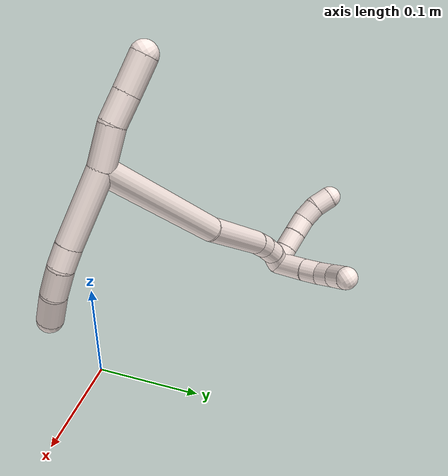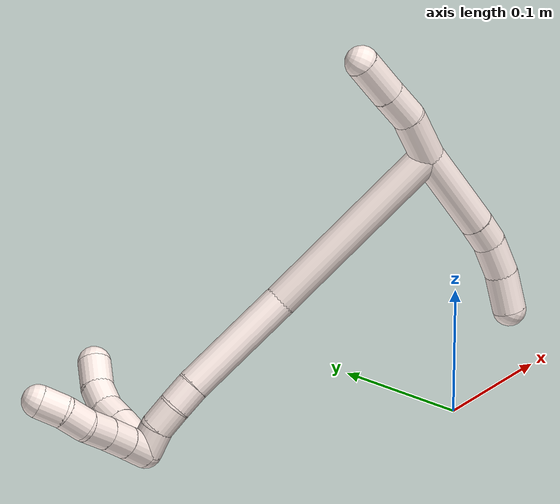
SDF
<sdf version="1.7">
 <world name="default">
  <model name="11">
   <static>0</static>
   <link name="11">
    <collision name="collision-cylinder-e_1_2_8">
     <pose>0.016882 0.010451 -0.029712 -2.80338 0.492017 -1.94727</pose>
     <geometry><cylinder><radius>0.0125</radius><length>0.071471</length></cylinder></geometry>
     <surface>
      <friction><ode><mu>1.16</mu><mu2>1.16</mu2><slip1>0</slip1><slip2>0</slip2></ode></friction>
      <contact><ode><kp>1e+06</kp><kd>1</kd><max_vel>0</max_vel><min_depth>0.001</min_depth></ode></contact>
     </surface>
    </collision>
    <visual name="visual-cylinder-e_1_2_8">
     <pose>0.016882 0.010451 -0.029712 -2.80338 0.492017 -1.94727</pose>
     <geometry><cylinder><radius>0.0125</radius><length>0.071471</length></cylinder></geometry>
     <material><ambient>1 0.933333 0.909804 1</ambient></material>
    </visual>
    <collision name="collision-cylinder-e_2_8_9">
     <pose>0.039063 0.024132 -0.067842 -2.77516 0.531437 -1.94609</pose>
     <geometry><cylinder><radius>0.0125</radius><length>0.020917</length></cylinder></geometry>
     <surface>
      <friction><ode><mu>1.16</mu><mu2>1.16</mu2><slip1>0</slip1><slip2>0</slip2></ode></friction>
      <contact><ode><kp>1e+06</kp><kd>1</kd><max_vel>0</max_vel><min_depth>0.001</min_depth></ode></contact>
     </surface>
    </collision>
    <visual name="visual-cylinder-e_2_8_9">
     <pose>0.039063 0.024132 -0.067842 -2.77516 0.531437 -1.94609</pose>
     <geometry><cylinder><radius>0.0125</radius><length>0.020917</length></cylinder></geometry>
     <material><ambient>1 0.933333 0.909804 1</ambient></material>
    </visual>
    <collision name="collision-cylinder-e_3_9_10">
     <pose>0.050424 0.03446 -0.086422 -2.53191 0.454736 -1.26808</pose>
     <geometry><cylinder><radius>0.0125</radius><length>0.027595</length></cylinder></geometry>
     <surface>
      <friction><ode><mu>1.16</mu><mu2>1.16</mu2><slip1>0</slip1><slip2>0</slip2></ode></friction>
      <contact><ode><kp>1e+06</kp><kd>1</kd><max_vel>0</max_vel><min_depth>0.001</min_depth></ode></contact>
     </surface>
    </collision>
    <visual name="visual-cylinder-e_3_9_10">
     <pose>0.050424 0.03446 -0.086422 -2.53191 0.454736 -1.26808</pose>
     <geometry><cylinder><radius>0.0125</radius><length>0.027595</length></cylinder></geometry>
     <material><ambient>1 0.933333 0.909804 1</ambient></material>
    </visual>
    <collision name="collision-cylinder-e_4_10_6">
     <pose>0.062019 0.051704 -0.106158 -2.32721 0.377753 -0.834384</pose>
     <geometry><cylinder><radius>0.0125</radius><length>0.030017</length></cylinder></geometry>
     <surface>
      <friction><ode><mu>1.16</mu><mu2>1.16</mu2><slip1>0</slip1><slip2>0</slip2></ode></friction>
      <contact><ode><kp>1e+06</kp><kd>1</kd><max_vel>0</max_vel><min_depth>0.001</min_depth></ode></contact>
     </surface>
    </collision>
    <visual name="visual-cylinder-e_4_10_6">
     <pose>0.062019 0.051704 -0.106158 -2.32721 0.377753 -0.834384</pose>
     <geometry><cylinder><radius>0.0125</radius><length>0.030017</length></cylinder></geometry>
     <material><ambient>1 0.933333 0.909804 1</ambient></material>
    </visual>
    <collision name="collision-cylinder-e_1_2_11">
     <pose>-0.010669 -0.007423 0.014176 0.482364 -0.588066 -0.14869</pose>
     <geometry><cylinder><radius>0.0125</radius><length>0.038465</length></cylinder></geometry>
     <surface>
      <friction><ode><mu>1.16</mu><mu2>1.16</mu2><slip1>0</slip1><slip2>0</slip2></ode></friction>
      <contact><ode><kp>1e+06</kp><kd>1</kd><max_vel>0</max_vel><min_depth>0.001</min_depth></ode></contact>
     </surface>
    </collision>
    <visual name="visual-cylinder-e_1_2_11">
     <pose>-0.010669 -0.007423 0.014176 0.482364 -0.588066 -0.14869</pose>
     <geometry><cylinder><radius>0.0125</radius><length>0.038465</length></cylinder></geometry>
     <material><ambient>1 0.933333 0.909804 1</ambient></material>
    </visual>
    <collision name="collision-cylinder-e_2_11_12">
     <pose>-0.027956 -0.017788 0.040143 0.244521 -0.498616 -0.062548</pose>
     <geometry><cylinder><radius>0.0125</radius><length>0.027673</length></cylinder></geometry>
     <surface>
      <friction><ode><mu>1.16</mu><mu2>1.16</mu2><slip1>0</slip1><slip2>0</slip2></ode></friction>
      <contact><ode><kp>1e+06</kp><kd>1</kd><max_vel>0</max_vel><min_depth>0.001</min_depth></ode></contact>
     </surface>
    </collision>
    <visual name="visual-cylinder-e_2_11_12">
     <pose>-0.027956 -0.017788 0.040143 0.244521 -0.498616 -0.062548</pose>
     <geometry><cylinder><radius>0.0125</radius><length>0.027673</length></cylinder></geometry>
     <material><ambient>1 0.933333 0.909804 1</ambient></material>
    </visual>
    <collision name="collision-cylinder-e_3_12_5">
     <pose>-0.042643 -0.024685 0.066281 0.268992 -0.496885 -0.068626</pose>
     <geometry><cylinder><radius>0.0125</radius><length>0.033862</length></cylinder></geometry>
     <surface>
      <friction><ode><mu>1.16</mu><mu2>1.16</mu2><slip1>0</slip1><slip2>0</slip2></ode></friction>
      <contact><ode><kp>1e+06</kp><kd>1</kd><max_vel>0</max_vel><min_depth>0.001</min_depth></ode></contact>
     </surface>
    </collision>
    <visual name="visual-cylinder-e_3_12_5">
     <pose>-0.042643 -0.024685 0.066281 0.268992 -0.496885 -0.068626</pose>
     <geometry><cylinder><radius>0.0125</radius><length>0.033862</length></cylinder></geometry>
     <material><ambient>1 0.933333 0.909804 1</ambient></material>
    </visual>
    <collision name="collision-cylinder-e_1_2_13">
     <pose>0.02793 0.065766 0.023665 -1.22538 0.380163 -0.268862</pose>
     <geometry><cylinder><radius>0.0125</radius><length>0.150536</length></cylinder></geometry>
     <surface>
      <friction><ode><mu>1.16</mu><mu2>1.16</mu2><slip1>0</slip1><slip2>0</slip2></ode></friction>
      <contact><ode><kp>1e+06</kp><kd>1</kd><max_vel>0</max_vel><min_depth>0.001</min_depth></ode></contact>
     </surface>
    </collision>
    <visual name="visual-cylinder-e_1_2_13">
     <pose>0.02793 0.065766 0.023665 -1.22538 0.380163 -0.268862</pose>
     <geometry><cylinder><radius>0.0125</radius><length>0.150536</length></cylinder></geometry>
     <material><ambient>1 0.933333 0.909804 1</ambient></material>
    </visual>
    <collision name="collision-cylinder-e_2_13_14">
     <pose>0.064078 0.172146 0.063246 -1.19733 0.186225 -0.127236</pose>
     <geometry><cylinder><radius>0.0125</radius><length>0.088778</length></cylinder></geometry>
     <surface>
      <friction><ode><mu>1.16</mu><mu2>1.16</mu2><slip1>0</slip1><slip2>0</slip2></ode></friction>
      <contact><ode><kp>1e+06</kp><kd>1</kd><max_vel>0</max_vel><min_depth>0.001</min_depth></ode></contact>
     </surface>
    </collision>
    <visual name="visual-cylinder-e_2_13_14">
     <pose>0.064078 0.172146 0.063246 -1.19733 0.186225 -0.127236</pose>
     <geometry><cylinder><radius>0.0125</radius><length>0.088778</length></cylinder></geometry>
     <material><ambient>1 0.933333 0.909804 1</ambient></material>
    </visual>
    <collision name="collision-cylinder-e_3_14_15">
     <pose>0.074602 0.222176 0.081914 -1.28632 0.23078 -0.173298</pose>
     <geometry><cylinder><radius>0.0125</radius><length>0.020153</length></cylinder></geometry>
     <surface>
      <friction><ode><mu>1.16</mu><mu2>1.16</mu2><slip1>0</slip1><slip2>0</slip2></ode></friction>
      <contact><ode><kp>1e+06</kp><kd>1</kd><max_vel>0</max_vel><min_depth>0.001</min_depth></ode></contact>
     </surface>
    </collision>
    <visual name="visual-cylinder-e_3_14_15">
     <pose>0.074602 0.222176 0.081914 -1.28632 0.23078 -0.173298</pose>
     <geometry><cylinder><radius>0.0125</radius><length>0.020153</length></cylinder></geometry>
     <material><ambient>1 0.933333 0.909804 1</ambient></material>
    </visual>
    <collision name="collision-cylinder-e_4_15_16">
     <pose>0.080773 0.240796 0.086953 -1.32731 0.387099 -0.304173</pose>
     <geometry><cylinder><radius>0.0125</radius><length>0.020486</length></cylinder></geometry>
     <surface>
      <friction><ode><mu>1.16</mu><mu2>1.16</mu2><slip1>0</slip1><slip2>0</slip2></ode></friction>
      <contact><ode><kp>1e+06</kp><kd>1</kd><max_vel>0</max_vel><min_depth>0.001</min_depth></ode></contact>
     </surface>
    </collision>
    <visual name="visual-cylinder-e_4_15_16">
     <pose>0.080773 0.240796 0.086953 -1.32731 0.387099 -0.304173</pose>
     <geometry><cylinder><radius>0.0125</radius><length>0.020486</length></cylinder></geometry>
     <material><ambient>1 0.933333 0.909804 1</ambient></material>
    </visual>
    <collision name="collision-cylinder-e_5_16_1">
     <pose>0.088976 0.259034 0.088936 -1.60449 0.447329 -0.46213</pose>
     <geometry><cylinder><radius>0.0125</radius><length>0.020047</length></cylinder></geometry>
     <surface>
      <friction><ode><mu>1.16</mu><mu2>1.16</mu2><slip1>0</slip1><slip2>0</slip2></ode></friction>
      <contact><ode><kp>1e+06</kp><kd>1</kd><max_vel>0</max_vel><min_depth>0.001</min_depth></ode></contact>
     </surface>
    </collision>
    <visual name="visual-cylinder-e_5_16_1">
     <pose>0.088976 0.259034 0.088936 -1.60449 0.447329 -0.46213</pose>
     <geometry><cylinder><radius>0.0125</radius><length>0.020047</length></cylinder></geometry>
     <material><ambient>1 0.933333 0.909804 1</ambient></material>
    </visual>
    <collision name="collision-cylinder-e_1_1_17">
     <pose>0.088421 0.268701 0.097331 -0.072865 -0.511018 0.019042</pose>
     <geometry><cylinder><radius>0.0125</radius><length>0.02</length></cylinder></geometry>
     <surface>
      <friction><ode><mu>1.16</mu><mu2>1.16</mu2><slip1>0</slip1><slip2>0</slip2></ode></friction>
      <contact><ode><kp>1e+06</kp><kd>1</kd><max_vel>0</max_vel><min_depth>0.001</min_depth></ode></contact>
     </surface>
    </collision>
    <visual name="visual-cylinder-e_1_1_17">
     <pose>0.088421 0.268701 0.097331 -0.072865 -0.511018 0.019042</pose>
     <geometry><cylinder><radius>0.0125</radius><length>0.02</length></cylinder></geometry>
     <material><ambient>1 0.933333 0.909804 1</ambient></material>
    </visual>
    <collision name="collision-cylinder-e_2_17_18">
     <pose>0.078858 0.270158 0.114833 -0.093047 -0.486171 0.02309</pose>
     <geometry><cylinder><radius>0.0125</radius><length>0.02</length></cylinder></geometry>
     <surface>
      <friction><ode><mu>1.16</mu><mu2>1.16</mu2><slip1>0</slip1><slip2>0</slip2></ode></friction>
      <contact><ode><kp>1e+06</kp><kd>1</kd><max_vel>0</max_vel><min_depth>0.001</min_depth></ode></contact>
     </surface>
    </collision>
    <visual name="visual-cylinder-e_2_17_18">
     <pose>0.078858 0.270158 0.114833 -0.093047 -0.486171 0.02309</pose>
     <geometry><cylinder><radius>0.0125</radius><length>0.02</length></cylinder></geometry>
     <material><ambient>1 0.933333 0.909804 1</ambient></material>
    </visual>
    <collision name="collision-cylinder-e_3_18_19">
     <pose>0.069499 0.272208 0.132384 -0.13959 -0.487765 0.034788</pose>
     <geometry><cylinder><radius>0.0125</radius><length>0.02</length></cylinder></geometry>
     <surface>
      <friction><ode><mu>1.16</mu><mu2>1.16</mu2><slip1>0</slip1><slip2>0</slip2></ode></friction>
      <contact><ode><kp>1e+06</kp><kd>1</kd><max_vel>0</max_vel><min_depth>0.001</min_depth></ode></contact>
     </surface>
    </collision>
    <visual name="visual-cylinder-e_3_18_19">
     <pose>0.069499 0.272208 0.132384 -0.13959 -0.487765 0.034788</pose>
     <geometry><cylinder><radius>0.0125</radius><length>0.02</length></cylinder></geometry>
     <material><ambient>1 0.933333 0.909804 1</ambient></material>
    </visual>
    <collision name="collision-cylinder-e_4_19_20">
     <pose>0.062128 0.272758 0.150741 0.070564 -0.271725 -0.00965</pose>
     <geometry><cylinder><radius>0.0125</radius><length>0.02</length></cylinder></geometry>
     <surface>
      <friction><ode><mu>1.16</mu><mu2>1.16</mu2><slip1>0</slip1><slip2>0</slip2></ode></friction>
      <contact><ode><kp>1e+06</kp><kd>1</kd><max_vel>0</max_vel><min_depth>0.001</min_depth></ode></contact>
     </surface>
    </collision>
    <visual name="visual-cylinder-e_4_19_20">
     <pose>0.062128 0.272758 0.150741 0.070564 -0.271725 -0.00965</pose>
     <geometry><cylinder><radius>0.0125</radius><length>0.02</length></cylinder></geometry>
     <material><ambient>1 0.933333 0.909804 1</ambient></material>
    </visual>
    <collision name="collision-cylinder-e_5_20_4">
     <pose>0.059175 0.272448 0.17034 -0.036901 -0.026941 0.000497</pose>
     <geometry><cylinder><radius>0.0125</radius><length>0.02</length></cylinder></geometry>
     <surface>
      <friction><ode><mu>1.16</mu><mu2>1.16</mu2><slip1>0</slip1><slip2>0</slip2></ode></friction>
      <contact><ode><kp>1e+06</kp><kd>1</kd><max_vel>0</max_vel><min_depth>0.001</min_depth></ode></contact>
     </surface>
    </collision>
    <visual name="visual-cylinder-e_5_20_4">
     <pose>0.059175 0.272448 0.17034 -0.036901 -0.026941 0.000497</pose>
     <geometry><cylinder><radius>0.0125</radius><length>0.02</length></cylinder></geometry>
     <material><ambient>1 0.933333 0.909804 1</ambient></material>
    </visual>
    <collision name="collision-cylinder-e_1_1_21">
     <pose>0.106244 0.260414 0.098713 0.649274 0.796159 0.281187</pose>
     <geometry><cylinder><radius>0.0125</radius><length>0.036191</length></cylinder></geometry>
     <surface>
      <friction><ode><mu>1.16</mu><mu2>1.16</mu2><slip1>0</slip1><slip2>0</slip2></ode></friction>
      <contact><ode><kp>1e+06</kp><kd>1</kd><max_vel>0</max_vel><min_depth>0.001</min_depth></ode></contact>
     </surface>
    </collision>
    <visual name="visual-cylinder-e_1_1_21">
     <pose>0.106244 0.260414 0.098713 0.649274 0.796159 0.281187</pose>
     <geometry><cylinder><radius>0.0125</radius><length>0.036191</length></cylinder></geometry>
     <material><ambient>1 0.933333 0.909804 1</ambient></material>
    </visual>
    <collision name="collision-cylinder-e_2_21_22">
     <pose>0.126275 0.249075 0.114839 0.547676 0.786752 0.232099</pose>
     <geometry><cylinder><radius>0.0125</radius><length>0.020051</length></cylinder></geometry>
     <surface>
      <friction><ode><mu>1.16</mu><mu2>1.16</mu2><slip1>0</slip1><slip2>0</slip2></ode></friction>
      <contact><ode><kp>1e+06</kp><kd>1</kd><max_vel>0</max_vel><min_depth>0.001</min_depth></ode></contact>
     </surface>
    </collision>
    <visual name="visual-cylinder-e_2_21_22">
     <pose>0.126275 0.249075 0.114839 0.547676 0.786752 0.232099</pose>
     <geometry><cylinder><radius>0.0125</radius><length>0.020051</length></cylinder></geometry>
     <material><ambient>1 0.933333 0.909804 1</ambient></material>
    </visual>
    <collision name="collision-cylinder-e_3_22_23">
     <pose>0.139403 0.239068 0.125992 0.891 0.638242 0.312977</pose>
     <geometry><cylinder><radius>0.0125</radius><length>0.020238</length></cylinder></geometry>
     <surface>
      <friction><ode><mu>1.16</mu><mu2>1.16</mu2><slip1>0</slip1><slip2>0</slip2></ode></friction>
      <contact><ode><kp>1e+06</kp><kd>1</kd><max_vel>0</max_vel><min_depth>0.001</min_depth></ode></contact>
     </surface>
    </collision>
    <visual name="visual-cylinder-e_3_22_23">
     <pose>0.139403 0.239068 0.125992 0.891 0.638242 0.312977</pose>
     <geometry><cylinder><radius>0.0125</radius><length>0.020238</length></cylinder></geometry>
     <material><ambient>1 0.933333 0.909804 1</ambient></material>
    </visual>
    <collision name="collision-cylinder-e_4_23_3">
     <pose>0.151207 0.223358 0.135196 1.15949 0.513383 0.340423</pose>
     <geometry><cylinder><radius>0.0125</radius><length>0.02352</length></cylinder></geometry>
     <surface>
      <friction><ode><mu>1.16</mu><mu2>1.16</mu2><slip1>0</slip1><slip2>0</slip2></ode></friction>
      <contact><ode><kp>1e+06</kp><kd>1</kd><max_vel>0</max_vel><min_depth>0.001</min_depth></ode></contact>
     </surface>
    </collision>
    <visual name="visual-cylinder-e_4_23_3">
     <pose>0.151207 0.223358 0.135196 1.15949 0.513383 0.340423</pose>
     <geometry><cylinder><radius>0.0125</radius><length>0.02352</length></cylinder></geometry>
     <material><ambient>1 0.933333 0.909804 1</ambient></material>
    </visual>
    <collision name="collision-sphere-3">
     <pose>0.156983 0.213968 0.139292 0 -0 0</pose>
     <geometry><sphere><radius>0.0125</radius></sphere></geometry>
     <surface>
      <friction><ode><mu>1.16</mu><mu2>1.16</mu2><slip1>0</slip1><slip2>0</slip2></ode></friction>
      <contact><ode><kp>1e+06</kp><kd>1</kd><max_vel>0</max_vel><min_depth>0.001</min_depth></ode></contact>
     </surface>
    </collision>
    <visual name="visual-sphere-3">
     <pose>0.156983 0.213968 0.139292 0 -0 0</pose>
     <geometry><sphere><radius>0.0125</radius></sphere></geometry>
     <material><ambient>1 0.933333 0.909804 1</ambient></material>
    </visual>
    <collision name="collision-sphere-23">
     <pose>0.145431 0.232748 0.1311 0 -0 0</pose>
     <geometry><sphere><radius>0.0125</radius></sphere></geometry>
     <surface>
      <friction><ode><mu>1.16</mu><mu2>1.16</mu2><slip1>0</slip1><slip2>0</slip2></ode></friction>
      <contact><ode><kp>1e+06</kp><kd>1</kd><max_vel>0</max_vel><min_depth>0.001</min_depth></ode></contact>
     </surface>
    </collision>
    <visual name="visual-sphere-23">
     <pose>0.145431 0.232748 0.1311 0 -0 0</pose>
     <geometry><sphere><radius>0.0125</radius></sphere></geometry>
     <material><ambient>1 0.933333 0.909804 1</ambient></material>
    </visual>
    <collision name="collision-sphere-22">
     <pose>0.133374 0.245388 0.120883 0 -0 0</pose>
     <geometry><sphere><radius>0.0125</radius></sphere></geometry>
     <surface>
      <friction><ode><mu>1.16</mu><mu2>1.16</mu2><slip1>0</slip1><slip2>0</slip2></ode></friction>
      <contact><ode><kp>1e+06</kp><kd>1</kd><max_vel>0</max_vel><min_depth>0.001</min_depth></ode></contact>
     </surface>
    </collision>
    <visual name="visual-sphere-22">
     <pose>0.133374 0.245388 0.120883 0 -0 0</pose>
     <geometry><sphere><radius>0.0125</radius></sphere></geometry>
     <material><ambient>1 0.933333 0.909804 1</ambient></material>
    </visual>
    <collision name="collision-sphere-21">
     <pose>0.119177 0.252761 0.108795 0 -0 0</pose>
     <geometry><sphere><radius>0.0125</radius></sphere></geometry>
     <surface>
      <friction><ode><mu>1.16</mu><mu2>1.16</mu2><slip1>0</slip1><slip2>0</slip2></ode></friction>
      <contact><ode><kp>1e+06</kp><kd>1</kd><max_vel>0</max_vel><min_depth>0.001</min_depth></ode></contact>
     </surface>
    </collision>
    <visual name="visual-sphere-21">
     <pose>0.119177 0.252761 0.108795 0 -0 0</pose>
     <geometry><sphere><radius>0.0125</radius></sphere></geometry>
     <material><ambient>1 0.933333 0.909804 1</ambient></material>
    </visual>
    <collision name="collision-sphere-4">
     <pose>0.058906 0.272817 0.180329 0 -0 0</pose>
     <geometry><sphere><radius>0.0125</radius></sphere></geometry>
     <surface>
      <friction><ode><mu>1.16</mu><mu2>1.16</mu2><slip1>0</slip1><slip2>0</slip2></ode></friction>
      <contact><ode><kp>1e+06</kp><kd>1</kd><max_vel>0</max_vel><min_depth>0.001</min_depth></ode></contact>
     </surface>
    </collision>
    <visual name="visual-sphere-4">
     <pose>0.058906 0.272817 0.180329 0 -0 0</pose>
     <geometry><sphere><radius>0.0125</radius></sphere></geometry>
     <material><ambient>1 0.933333 0.909804 1</ambient></material>
    </visual>
    <collision name="collision-sphere-20">
     <pose>0.059445 0.272079 0.16035 0 -0 0</pose>
     <geometry><sphere><radius>0.0125</radius></sphere></geometry>
     <surface>
      <friction><ode><mu>1.16</mu><mu2>1.16</mu2><slip1>0</slip1><slip2>0</slip2></ode></friction>
      <contact><ode><kp>1e+06</kp><kd>1</kd><max_vel>0</max_vel><min_depth>0.001</min_depth></ode></contact>
     </surface>
    </collision>
    <visual name="visual-sphere-20">
     <pose>0.059445 0.272079 0.16035 0 -0 0</pose>
     <geometry><sphere><radius>0.0125</radius></sphere></geometry>
     <material><ambient>1 0.933333 0.909804 1</ambient></material>
    </visual>
    <collision name="collision-sphere-11">
     <pose>-0.021339 -0.014846 0.028352 0 -0 0</pose>
     <geometry><sphere><radius>0.0125</radius></sphere></geometry>
     <surface>
      <friction><ode><mu>1.16</mu><mu2>1.16</mu2><slip1>0</slip1><slip2>0</slip2></ode></friction>
      <contact><ode><kp>1e+06</kp><kd>1</kd><max_vel>0</max_vel><min_depth>0.001</min_depth></ode></contact>
     </surface>
    </collision>
    <visual name="visual-sphere-11">
     <pose>-0.021339 -0.014846 0.028352 0 -0 0</pose>
     <geometry><sphere><radius>0.0125</radius></sphere></geometry>
     <material><ambient>1 0.933333 0.909804 1</ambient></material>
    </visual>
    <collision name="collision-sphere-6">
     <pose>0.067555 0.06185 -0.115732 0 -0 0</pose>
     <geometry><sphere><radius>0.0125</radius></sphere></geometry>
     <surface>
      <friction><ode><mu>1.16</mu><mu2>1.16</mu2><slip1>0</slip1><slip2>0</slip2></ode></friction>
      <contact><ode><kp>1e+06</kp><kd>1</kd><max_vel>0</max_vel><min_depth>0.001</min_depth></ode></contact>
     </surface>
    </collision>
    <visual name="visual-sphere-6">
     <pose>0.067555 0.06185 -0.115732 0 -0 0</pose>
     <geometry><sphere><radius>0.0125</radius></sphere></geometry>
     <material><ambient>1 0.933333 0.909804 1</ambient></material>
    </visual>
    <collision name="collision-sphere-10">
     <pose>0.056484 0.041557 -0.096584 0 -0 0</pose>
     <geometry><sphere><radius>0.0125</radius></sphere></geometry>
     <surface>
      <friction><ode><mu>1.16</mu><mu2>1.16</mu2><slip1>0</slip1><slip2>0</slip2></ode></friction>
      <contact><ode><kp>1e+06</kp><kd>1</kd><max_vel>0</max_vel><min_depth>0.001</min_depth></ode></contact>
     </surface>
    </collision>
    <visual name="visual-sphere-10">
     <pose>0.056484 0.041557 -0.096584 0 -0 0</pose>
     <geometry><sphere><radius>0.0125</radius></sphere></geometry>
     <material><ambient>1 0.933333 0.909804 1</ambient></material>
    </visual>
    <collision name="collision-sphere-9">
     <pose>0.044363 0.027362 -0.07626 0 -0 0</pose>
     <geometry><sphere><radius>0.0125</radius></sphere></geometry>
     <surface>
      <friction><ode><mu>1.16</mu><mu2>1.16</mu2><slip1>0</slip1><slip2>0</slip2></ode></friction>
      <contact><ode><kp>1e+06</kp><kd>1</kd><max_vel>0</max_vel><min_depth>0.001</min_depth></ode></contact>
     </surface>
    </collision>
    <visual name="visual-sphere-9">
     <pose>0.044363 0.027362 -0.07626 0 -0 0</pose>
     <geometry><sphere><radius>0.0125</radius></sphere></geometry>
     <material><ambient>1 0.933333 0.909804 1</ambient></material>
    </visual>
    <collision name="collision-sphere-2">
     <geometry><sphere><radius>0.0125</radius></sphere></geometry>
     <surface>
      <friction><ode><mu>1.16</mu><mu2>1.16</mu2><slip1>0</slip1><slip2>0</slip2></ode></friction>
      <contact><ode><kp>1e+06</kp><kd>1</kd><max_vel>0</max_vel><min_depth>0.001</min_depth></ode></contact>
     </surface>
    </collision>
    <visual name="visual-sphere-2">
     <geometry><sphere><radius>0.0125</radius></sphere></geometry>
     <material><ambient>1 0.933333 0.909804 1</ambient></material>
    </visual>
    <collision name="collision-sphere-19">
     <pose>0.064812 0.273437 0.141132 0 -0 0</pose>
     <geometry><sphere><radius>0.0125</radius></sphere></geometry>
     <surface>
      <friction><ode><mu>1.16</mu><mu2>1.16</mu2><slip1>0</slip1><slip2>0</slip2></ode></friction>
      <contact><ode><kp>1e+06</kp><kd>1</kd><max_vel>0</max_vel><min_depth>0.001</min_depth></ode></contact>
     </surface>
    </collision>
    <visual name="visual-sphere-19">
     <pose>0.064812 0.273437 0.141132 0 -0 0</pose>
     <geometry><sphere><radius>0.0125</radius></sphere></geometry>
     <material><ambient>1 0.933333 0.909804 1</ambient></material>
    </visual>
    <collision name="collision-sphere-8">
     <pose>0.033763 0.020901 -0.059425 0 -0 0</pose>
     <geometry><sphere><radius>0.0125</radius></sphere></geometry>
     <surface>
      <friction><ode><mu>1.16</mu><mu2>1.16</mu2><slip1>0</slip1><slip2>0</slip2></ode></friction>
      <contact><ode><kp>1e+06</kp><kd>1</kd><max_vel>0</max_vel><min_depth>0.001</min_depth></ode></contact>
     </surface>
    </collision>
    <visual name="visual-sphere-8">
     <pose>0.033763 0.020901 -0.059425 0 -0 0</pose>
     <geometry><sphere><radius>0.0125</radius></sphere></geometry>
     <material><ambient>1 0.933333 0.909804 1</ambient></material>
    </visual>
    <collision name="collision-sphere-12">
     <pose>-0.034572 -0.02073 0.051933 0 -0 0</pose>
     <geometry><sphere><radius>0.0125</radius></sphere></geometry>
     <surface>
      <friction><ode><mu>1.16</mu><mu2>1.16</mu2><slip1>0</slip1><slip2>0</slip2></ode></friction>
      <contact><ode><kp>1e+06</kp><kd>1</kd><max_vel>0</max_vel><min_depth>0.001</min_depth></ode></contact>
     </surface>
    </collision>
    <visual name="visual-sphere-12">
     <pose>-0.034572 -0.02073 0.051933 0 -0 0</pose>
     <geometry><sphere><radius>0.0125</radius></sphere></geometry>
     <material><ambient>1 0.933333 0.909804 1</ambient></material>
    </visual>
    <collision name="collision-sphere-5">
     <pose>-0.050714 -0.02864 0.080629 0 -0 0</pose>
     <geometry><sphere><radius>0.0125</radius></sphere></geometry>
     <surface>
      <friction><ode><mu>1.16</mu><mu2>1.16</mu2><slip1>0</slip1><slip2>0</slip2></ode></friction>
      <contact><ode><kp>1e+06</kp><kd>1</kd><max_vel>0</max_vel><min_depth>0.001</min_depth></ode></contact>
     </surface>
    </collision>
    <visual name="visual-sphere-5">
     <pose>-0.050714 -0.02864 0.080629 0 -0 0</pose>
     <geometry><sphere><radius>0.0125</radius></sphere></geometry>
     <material><ambient>1 0.933333 0.909804 1</ambient></material>
    </visual>
    <collision name="collision-sphere-13">
     <pose>0.05586 0.131532 0.047331 0 -0 0</pose>
     <geometry><sphere><radius>0.0125</radius></sphere></geometry>
     <surface>
      <friction><ode><mu>1.16</mu><mu2>1.16</mu2><slip1>0</slip1><slip2>0</slip2></ode></friction>
      <contact><ode><kp>1e+06</kp><kd>1</kd><max_vel>0</max_vel><min_depth>0.001</min_depth></ode></contact>
     </surface>
    </collision>
    <visual name="visual-sphere-13">
     <pose>0.05586 0.131532 0.047331 0 -0 0</pose>
     <geometry><sphere><radius>0.0125</radius></sphere></geometry>
     <material><ambient>1 0.933333 0.909804 1</ambient></material>
    </visual>
    <collision name="collision-sphere-14">
     <pose>0.072297 0.212761 0.079161 0 -0 0</pose>
     <geometry><sphere><radius>0.0125</radius></sphere></geometry>
     <surface>
      <friction><ode><mu>1.16</mu><mu2>1.16</mu2><slip1>0</slip1><slip2>0</slip2></ode></friction>
      <contact><ode><kp>1e+06</kp><kd>1</kd><max_vel>0</max_vel><min_depth>0.001</min_depth></ode></contact>
     </surface>
    </collision>
    <visual name="visual-sphere-14">
     <pose>0.072297 0.212761 0.079161 0 -0 0</pose>
     <geometry><sphere><radius>0.0125</radius></sphere></geometry>
     <material><ambient>1 0.933333 0.909804 1</ambient></material>
    </visual>
    <collision name="collision-sphere-15">
     <pose>0.076907 0.231591 0.084667 0 -0 0</pose>
     <geometry><sphere><radius>0.0125</radius></sphere></geometry>
     <surface>
      <friction><ode><mu>1.16</mu><mu2>1.16</mu2><slip1>0</slip1><slip2>0</slip2></ode></friction>
      <contact><ode><kp>1e+06</kp><kd>1</kd><max_vel>0</max_vel><min_depth>0.001</min_depth></ode></contact>
     </surface>
    </collision>
    <visual name="visual-sphere-15">
     <pose>0.076907 0.231591 0.084667 0 -0 0</pose>
     <geometry><sphere><radius>0.0125</radius></sphere></geometry>
     <material><ambient>1 0.933333 0.909804 1</ambient></material>
    </visual>
    <collision name="collision-sphere-16">
     <pose>0.08464 0.250001 0.08924 0 -0 0</pose>
     <geometry><sphere><radius>0.0125</radius></sphere></geometry>
     <surface>
      <friction><ode><mu>1.16</mu><mu2>1.16</mu2><slip1>0</slip1><slip2>0</slip2></ode></friction>
      <contact><ode><kp>1e+06</kp><kd>1</kd><max_vel>0</max_vel><min_depth>0.001</min_depth></ode></contact>
     </surface>
    </collision>
    <visual name="visual-sphere-16">
     <pose>0.08464 0.250001 0.08924 0 -0 0</pose>
     <geometry><sphere><radius>0.0125</radius></sphere></geometry>
     <material><ambient>1 0.933333 0.909804 1</ambient></material>
    </visual>
    <collision name="collision-sphere-1">
     <pose>0.093312 0.268066 0.088631 0 -0 0</pose>
     <geometry><sphere><radius>0.0125</radius></sphere></geometry>
     <surface>
      <friction><ode><mu>1.16</mu><mu2>1.16</mu2><slip1>0</slip1><slip2>0</slip2></ode></friction>
      <contact><ode><kp>1e+06</kp><kd>1</kd><max_vel>0</max_vel><min_depth>0.001</min_depth></ode></contact>
     </surface>
    </collision>
    <visual name="visual-sphere-1">
     <pose>0.093312 0.268066 0.088631 0 -0 0</pose>
     <geometry><sphere><radius>0.0125</radius></sphere></geometry>
     <material><ambient>1 0.933333 0.909804 1</ambient></material>
    </visual>
    <collision name="collision-sphere-18">
     <pose>0.074185 0.270979 0.123636 0 -0 0</pose>
     <geometry><sphere><radius>0.0125</radius></sphere></geometry>
     <surface>
      <friction><ode><mu>1.16</mu><mu2>1.16</mu2><slip1>0</slip1><slip2>0</slip2></ode></friction>
      <contact><ode><kp>1e+06</kp><kd>1</kd><max_vel>0</max_vel><min_depth>0.001</min_depth></ode></contact>
     </surface>
    </collision>
    <visual name="visual-sphere-18">
     <pose>0.074185 0.270979 0.123636 0 -0 0</pose>
     <geometry><sphere><radius>0.0125</radius></sphere></geometry>
     <material><ambient>1 0.933333 0.909804 1</ambient></material>
    </visual>
    <collision name="collision-sphere-17">
     <pose>0.08353 0.269336 0.10603 0 -0 0</pose>
     <geometry><sphere><radius>0.0125</radius></sphere></geometry>
     <surface>
      <friction><ode><mu>1.16</mu><mu2>1.16</mu2><slip1>0</slip1><slip2>0</slip2></ode></friction>
      <contact><ode><kp>1e+06</kp><kd>1</kd><max_vel>0</max_vel><min_depth>0.001</min_depth></ode></contact>
     </surface>
    </collision>
    <visual name="visual-sphere-17">
     <pose>0.08353 0.269336 0.10603 0 -0 0</pose>
     <geometry><sphere><radius>0.0125</radius></sphere></geometry>
     <material><ambient>1 0.933333 0.909804 1</ambient></material>
    </visual>
    <inertial>
     <pose>0.049867 0.124751 0.045462 0 -0 0</pose>
     <mass>0.75</mass>
     <inertia>
      <ixx>0.000239</ixx>
      <ixy>0</ixy>
      <ixz>0</ixz>
      <iyy>9.8e-05</iyy>
      <iyz>0</iyz>
      <izz>-0.000441</izz>
     </inertia>
    </inertial>
   </link>
   <pose>-0.02444 0.009273 0.214663 -1.01193 0.538683 0.960094</pose>
  </model>
 </world>
</sdf>
